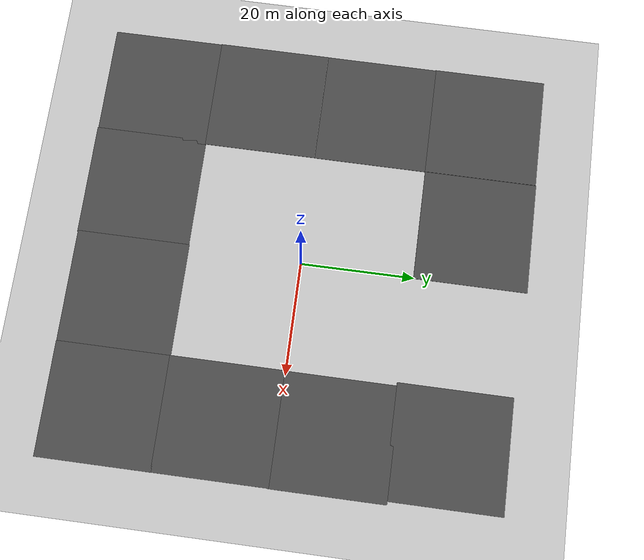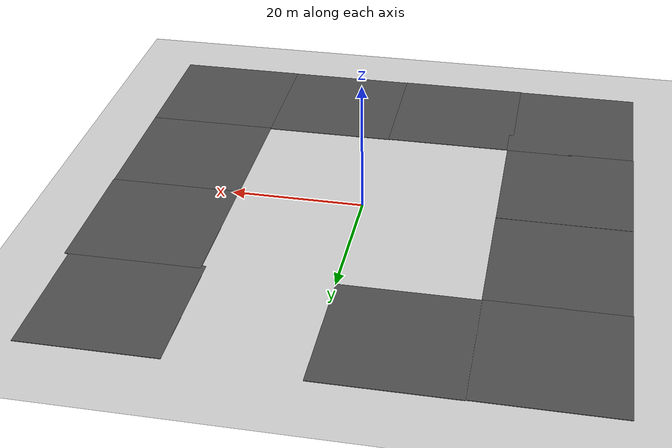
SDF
<sdf version="1.7">
 <world name="default">
  <light name="sun_center" type="directional">
   <pose>0 0 30 0 -0 0</pose>
   <diffuse>0.2 0.2 0.2 0.6</diffuse>
   <specular>0.05 0.05 0.05 1</specular>
   <attenuation>
    <range>1000</range>
    <constant>0.9</constant>
    <linear>0.01</linear>
    <quadratic>0.001</quadratic>
   </attenuation>
   <direction>-0.5 0 -0.9</direction>
   <spot><inner_angle>0</inner_angle><outer_angle>0</outer_angle><falloff>0</falloff></spot>
  </light>
  <light name="sun_top_right" type="directional">
   <pose>30 30 30 0 -0 0</pose>
   <diffuse>0.4 0.4 0.4 0.6</diffuse>
   <specular>0.05 0.05 0.05 1</specular>
   <attenuation>
    <range>1000</range>
    <constant>0.9</constant>
    <linear>0.01</linear>
    <quadratic>0.001</quadratic>
   </attenuation>
   <direction>-0.5 0 -0.9</direction>
   <spot><inner_angle>0</inner_angle><outer_angle>0</outer_angle><falloff>0</falloff></spot>
  </light>
  <light name="sun_top_left" type="directional">
   <pose>-30 30 30 0 -0 0</pose>
   <diffuse>0.4 0.4 0.4 0.6</diffuse>
   <specular>0.05 0.05 0.05 1</specular>
   <attenuation>
    <range>1000</range>
    <constant>0.9</constant>
    <linear>0.01</linear>
    <quadratic>0.001</quadratic>
   </attenuation>
   <direction>0.5 0 -0.9</direction>
   <spot><inner_angle>0</inner_angle><outer_angle>0</outer_angle><falloff>0</falloff></spot>
  </light>
  <light name="sun_bottom_left" type="directional">
   <pose>-30 -30 30 0 -0 0</pose>
   <diffuse>0.4 0.4 0.4 0.6</diffuse>
   <specular>0.05 0.05 0.05 1</specular>
   <attenuation>
    <range>1000</range>
    <constant>0.9</constant>
    <linear>0.01</linear>
    <quadratic>0.001</quadratic>
   </attenuation>
   <direction>0.5 0 -0.9</direction>
   <spot><inner_angle>0</inner_angle><outer_angle>0</outer_angle><falloff>0</falloff></spot>
  </light>
  <light name="sun_bottom_right" type="directional">
   <pose>30 -30 30 0 -0 0</pose>
   <diffuse>0.4 0.4 0.4 0.6</diffuse>
   <specular>0.05 0.05 0.05 1</specular>
   <attenuation>
    <range>1000</range>
    <constant>0.9</constant>
    <linear>0.01</linear>
    <quadratic>0.001</quadratic>
   </attenuation>
   <direction>-0.5 0 -0.9</direction>
   <spot><inner_angle>0</inner_angle><outer_angle>0</outer_angle><falloff>0</falloff></spot>
  </light>
  <model name="ground_plane">
   <static>1</static>
   <link name="link">
    <collision name="collision">
     <geometry><plane><normal>0 0 1</normal><size>200 200</size></plane></geometry>
     <surface>
      <contact><collide_bitmask>65535</collide_bitmask></contact>
      <friction><ode><mu>100</mu><mu2>50</mu2></ode></friction>
     </surface>
    </collision>
    <visual name="visual">
     <cast_shadows>0</cast_shadows>
     <geometry><plane><normal>0 0 1</normal><size>40 40</size></plane></geometry>
     <material>
      <script>
       <uri>../../../gazebo_resources/share/gazebo_resources/models/Asphalt_Ground_Plane/Materials/Scripts/asphalt_plane.material</uri>
       <uri>../../../gazebo_resources/share/gazebo_resources/models/Asphalt_Ground_Plane/Materials/Textures/asphalt_plane_2.png</uri>
       <name>MyGroundPlane/Image</name>
      </script>
     </material>
    </visual>
    <self_collide>1</self_collide>
    <enable_wind>1</enable_wind>
    <kinematic>1</kinematic>
   </link>
  </model>
  <gravity>0 0 -9.8</gravity>
  <magnetic_field>6e-06 2.3e-05 -4.2e-05</magnetic_field>
  <atmosphere type="adiabatic"/>
  <physics type="ode">
   <max_step_size>0.001</max_step_size>
   <real_time_factor>1</real_time_factor>
   <real_time_update_rate>1000</real_time_update_rate>
  </physics>
  <scene><ambient>0.4 0.4 0.4 1</ambient><background>0.7 0.7 0.7 1</background><shadows>1</shadows></scene>
  <spherical_coordinates>
   <surface_model>EARTH_WGS84</surface_model>
   <latitude_deg>0</latitude_deg>
   <longitude_deg>0</longitude_deg>
   <elevation>0</elevation>
   <heading_deg>0</heading_deg>
  </spherical_coordinates>
  <model name="asphalt_plane">
   <static>1</static>
   <link name="link">
    <collision name="collision"><geometry><box><size>20 20 0.1</size></box></geometry></collision>
    <visual name="visual">
     <cast_shadows>0</cast_shadows>
     <geometry><box><size>20 20 0.1</size></box></geometry>
     <material>
      <script>
       <uri>model://asphalt_plane/materials/scripts</uri>
       <uri>model://asphalt_plane/materials/textures</uri>
       <name>vrc/asphalt</name>
      </script>
     </material>
    </visual>
   </link>
   <pose>-9.98 29.8665 0 0 -0 0</pose>
  </model>
  <model name="asphalt_plane_clone">
   <static>1</static>
   <link name="link">
    <collision name="collision"><geometry><box><size>20 20 0.1</size></box></geometry></collision>
    <visual name="visual">
     <cast_shadows>0</cast_shadows>
     <geometry><box><size>20 20 0.1</size></box></geometry>
     <material>
      <script>
       <uri>model://asphalt_plane/materials/scripts</uri>
       <uri>model://asphalt_plane/materials/textures</uri>
       <name>vrc/asphalt</name>
      </script>
     </material>
    </visual>
   </link>
   <pose>-30.0327 29.7819 0 0 -0 0</pose>
  </model>
  <model name="asphalt_plane_clone_0">
   <static>1</static>
   <link name="link">
    <collision name="collision"><geometry><box><size>20 20 0.1</size></box></geometry></collision>
    <visual name="visual">
     <cast_shadows>0</cast_shadows>
     <geometry><box><size>20 20 0.1</size></box></geometry>
     <material>
      <script>
       <uri>model://asphalt_plane/materials/scripts</uri>
       <uri>model://asphalt_plane/materials/textures</uri>
       <name>vrc/asphalt</name>
      </script>
     </material>
    </visual>
   </link>
   <pose>-29.9498 9.83685 0 0 -0 0</pose>
  </model>
  <model name="asphalt_plane_clone_0_clone">
   <static>1</static>
   <link name="link">
    <collision name="collision"><geometry><box><size>20 20 0.1</size></box></geometry></collision>
    <visual name="visual">
     <cast_shadows>0</cast_shadows>
     <geometry><box><size>20 20 0.1</size></box></geometry>
     <material>
      <script>
       <uri>model://asphalt_plane/materials/scripts</uri>
       <uri>model://asphalt_plane/materials/textures</uri>
       <name>vrc/asphalt</name>
      </script>
     </material>
    </visual>
   </link>
   <pose>-29.9709 -10.2001 0 0 -0 0</pose>
  </model>
  <model name="asphalt_plane_clone_0_clone_clone">
   <static>1</static>
   <link name="link">
    <collision name="collision"><geometry><box><size>20 20 0.1</size></box></geometry></collision>
    <visual name="visual">
     <cast_shadows>0</cast_shadows>
     <geometry><box><size>20 20 0.1</size></box></geometry>
     <material>
      <script>
       <uri>model://asphalt_plane/materials/scripts</uri>
       <uri>model://asphalt_plane/materials/textures</uri>
       <name>vrc/asphalt</name>
      </script>
     </material>
    </visual>
   </link>
   <pose>-29.878 -29.9434 0 0 -0 0</pose>
  </model>
  <model name="asphalt_plane_clone_0_clone_clone_0">
   <static>1</static>
   <link name="link">
    <collision name="collision"><geometry><box><size>20 20 0.1</size></box></geometry></collision>
    <visual name="visual">
     <cast_shadows>0</cast_shadows>
     <geometry><box><size>20 20 0.1</size></box></geometry>
     <material>
      <script>
       <uri>model://asphalt_plane/materials/scripts</uri>
       <uri>model://asphalt_plane/materials/textures</uri>
       <name>vrc/asphalt</name>
      </script>
     </material>
    </visual>
   </link>
   <pose>-10.6116 -30.0603 0 0 -0 0</pose>
  </model>
  <model name="asphalt_plane_clone_0_clone_clone_1">
   <static>1</static>
   <link name="link">
    <collision name="collision"><geometry><box><size>20 20 0.1</size></box></geometry></collision>
    <visual name="visual">
     <cast_shadows>0</cast_shadows>
     <geometry><box><size>20 20 0.1</size></box></geometry>
     <material>
      <script>
       <uri>model://asphalt_plane/materials/scripts</uri>
       <uri>model://asphalt_plane/materials/textures</uri>
       <name>vrc/asphalt</name>
      </script>
     </material>
    </visual>
   </link>
   <pose>9.12943 -29.9702 0 0 -0 0</pose>
  </model>
  <model name="asphalt_plane_clone_0_clone_clone_2">
   <static>1</static>
   <link name="link">
    <collision name="collision"><geometry><box><size>20 20 0.1</size></box></geometry></collision>
    <visual name="visual">
     <cast_shadows>0</cast_shadows>
     <geometry><box><size>20 20 0.1</size></box></geometry>
     <material>
      <script>
       <uri>model://asphalt_plane/materials/scripts</uri>
       <uri>model://asphalt_plane/materials/textures</uri>
       <name>vrc/asphalt</name>
      </script>
     </material>
    </visual>
   </link>
   <pose>29.1149 -30.0168 0 0 -0 0</pose>
  </model>
  <model name="asphalt_plane_clone_0_clone_clone_3">
   <static>1</static>
   <link name="link">
    <collision name="collision"><geometry><box><size>20 20 0.1</size></box></geometry></collision>
    <visual name="visual">
     <cast_shadows>0</cast_shadows>
     <geometry><box><size>20 20 0.1</size></box></geometry>
     <material>
      <script>
       <uri>model://asphalt_plane/materials/scripts</uri>
       <uri>model://asphalt_plane/materials/textures</uri>
       <name>vrc/asphalt</name>
      </script>
     </material>
    </visual>
   </link>
   <pose>29.1016 -10.1629 0 0 -0 0</pose>
  </model>
  <model name="asphalt_plane_clone_0_clone_clone_4">
   <static>1</static>
   <link name="link">
    <collision name="collision"><geometry><box><size>20 20 0.1</size></box></geometry></collision>
    <visual name="visual">
     <cast_shadows>0</cast_shadows>
     <geometry><box><size>20 20 0.1</size></box></geometry>
     <material>
      <script>
       <uri>model://asphalt_plane/materials/scripts</uri>
       <uri>model://asphalt_plane/materials/textures</uri>
       <name>vrc/asphalt</name>
      </script>
     </material>
    </visual>
   </link>
   <pose>29.1665 9.65814 0 0 -0 0</pose>
  </model>
  <model name="asphalt_plane_clone_0_clone_clone_5">
   <static>1</static>
   <link name="link">
    <collision name="collision"><geometry><box><size>20 20 0.1</size></box></geometry></collision>
    <visual name="visual">
     <cast_shadows>0</cast_shadows>
     <geometry><box><size>20 20 0.1</size></box></geometry>
     <material>
      <script>
       <uri>model://asphalt_plane/materials/scripts</uri>
       <uri>model://asphalt_plane/materials/textures</uri>
       <name>vrc/asphalt</name>
      </script>
     </material>
    </visual>
   </link>
   <pose>28.5628 29.0798 0 0 -0 0</pose>
  </model>
 </world>
</sdf>
